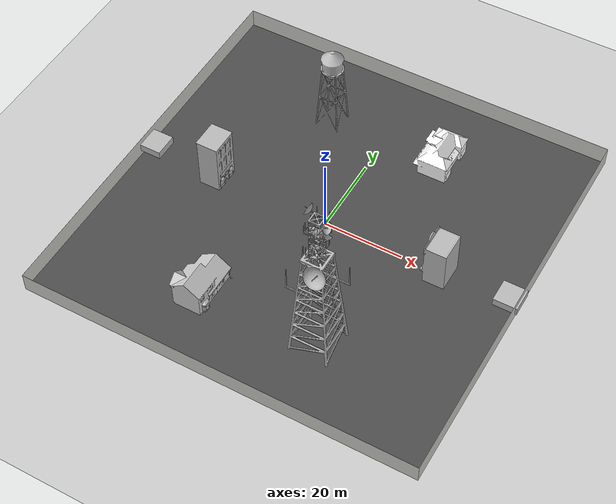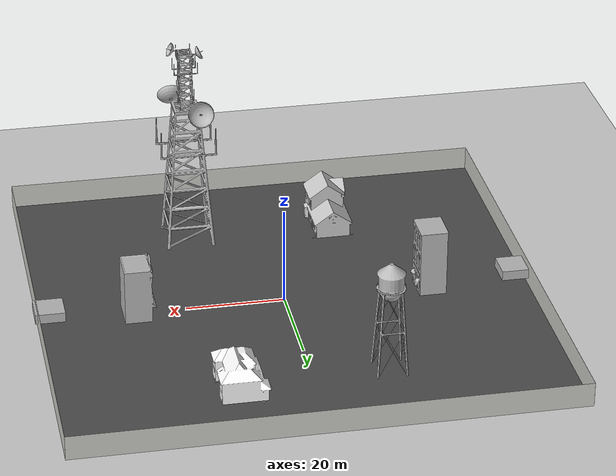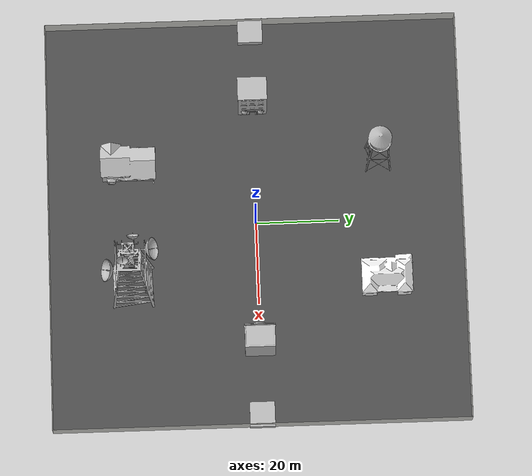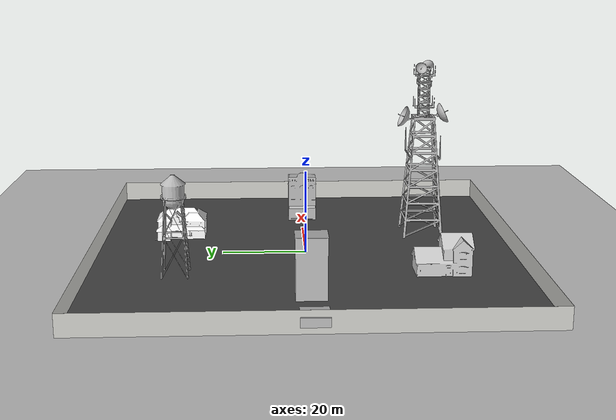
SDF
<sdf version="1.6">
 <world name="default">
  <light name="sun" type="directional">
   <pose>0 0 10 0 -0 0</pose>
   <diffuse>0.8 0.8 0.8 1</diffuse>
   <specular>0.1 0.1 0.1 1</specular>
   <attenuation>
    <range>1000</range>
    <constant>0.9</constant>
    <linear>0.01</linear>
    <quadratic>0.001</quadratic>
   </attenuation>
   <direction>-0.5 0.5 -1</direction>
  </light>
  <model name="ground_plane">
   <static>1</static>
   <link name="link">
    <collision name="collision">
     <geometry><plane><normal>0 0 1</normal><size>100 100</size></plane></geometry>
     <surface><friction><ode><mu>100</mu><mu2>50</mu2></ode></friction></surface>
    </collision>
    <visual name="visual">
     <cast_shadows>0</cast_shadows>
     <geometry><plane><normal>0 0 1</normal><size>100 100</size></plane></geometry>
     <material>
      <script><uri>file://media/materials/scripts/gazebo.material</uri><name>Gazebo/Grey</name></script>
     </material>
    </visual>
   </link>
  </model>
  <gravity>0 0 -9.8</gravity>
  <magnetic_field>6e-06 2.3e-05 -4.2e-05</magnetic_field>
  <atmosphere type="adiabatic"/>
  <physics name="default_physics" default="0" type="ode">
   <max_step_size>0.005</max_step_size>
   <real_time_factor>1</real_time_factor>
   <real_time_update_rate>1000</real_time_update_rate>
  </physics>
  <scene><ambient>0.4 0.4 0.4 1</ambient><background>0.7 0.7 0.7 1</background><shadows>1</shadows></scene>
  <spherical_coordinates>
   <surface_model>EARTH_WGS84</surface_model>
   <latitude_deg>0</latitude_deg>
   <longitude_deg>0</longitude_deg>
   <elevation>0</elevation>
   <heading_deg>0</heading_deg>
  </spherical_coordinates>
  <model name="1907082Y2B_wall">
   <link name="Wall_11">
    <collision name="Wall_11_Collision">
     <geometry><box><size>100.01 0.01 5</size></box></geometry>
     <pose>0 0 2.5 0 -0 0</pose>
    </collision>
    <visual name="Wall_11_Visual">
     <pose>0 0 2.5 0 -0 0</pose>
     <geometry><box><size>100.01 0.01 5</size></box></geometry>
     <material>
      <script><uri>file://media/materials/scripts/gazebo.material</uri><name>Gazebo/CeilingTiled</name></script>
      <ambient>1 1 1 1</ambient>
     </material>
    </visual>
    <pose>50 2e-06 0 0 0 -1.5708</pose>
   </link>
   <link name="Wall_5">
    <collision name="Wall_5_Collision">
     <geometry><box><size>100.01 0.01 5</size></box></geometry>
     <pose>0 0 2.5 0 -0 0</pose>
    </collision>
    <visual name="Wall_5_Visual">
     <pose>0 0 2.5 0 -0 0</pose>
     <geometry><box><size>100.01 0.01 5</size></box></geometry>
     <material>
      <script><uri>file://media/materials/scripts/gazebo.material</uri><name>Gazebo/CeilingTiled</name></script>
      <ambient>1 1 1 1</ambient>
     </material>
    </visual>
    <pose>1e-06 -50 0 0 -0 0</pose>
   </link>
   <link name="Wall_7">
    <collision name="Wall_7_Collision">
     <geometry><box><size>100.01 0.01 5</size></box></geometry>
     <pose>0 0 2.5 0 -0 0</pose>
    </collision>
    <visual name="Wall_7_Visual">
     <pose>0 0 2.5 0 -0 0</pose>
     <geometry><box><size>100.01 0.01 5</size></box></geometry>
     <material>
      <script><uri>file://media/materials/scripts/gazebo.material</uri><name>Gazebo/CeilingTiled</name></script>
      <ambient>1 1 1 1</ambient>
     </material>
    </visual>
    <pose>-50 2e-06 0 0 -0 1.5708</pose>
   </link>
   <link name="Wall_9">
    <collision name="Wall_9_Collision">
     <geometry><box><size>100.01 0.01 5</size></box></geometry>
     <pose>0 0 2.5 0 -0 0</pose>
    </collision>
    <visual name="Wall_9_Visual">
     <pose>0 0 2.5 0 -0 0</pose>
     <geometry><box><size>100.01 0.01 5</size></box></geometry>
     <material>
      <script><uri>file://media/materials/scripts/gazebo.material</uri><name>Gazebo/CeilingTiled</name></script>
      <ambient>1 1 1 1</ambient>
     </material>
    </visual>
    <pose>1e-06 50 0 0 -0 0</pose>
   </link>
   <static>1</static>
  </model>
  <model name="1807082Y2B_box_target_green_1">
   <link name="link">
    <inertial>
     <mass>1</mass>
     <inertia><ixx>1</ixx><ixy>0</ixy><ixz>0</ixz><iyy>1</iyy><iyz>0</iyz><izz>1</izz></inertia>
    </inertial>
    <visual name="visual">
     <geometry><mesh><uri>model://box_target_green/meshes/mesh.dae</uri><scale>1 1 1</scale></mesh></geometry>
     <material><shader type="vertex"><normal_map>__default__</normal_map></shader></material>
    </visual>
    <collision name="collision">
     <geometry><box><size>5 10 5</size></box></geometry>
     <surface>
      <friction>
       <ode><mu>1</mu><mu2>1</mu2><fdir1>0 0 0</fdir1><slip1>0</slip1><slip2>0</slip2></ode>
       <torsional>
        <coefficient>1</coefficient>
        <patch_radius>0</patch_radius>
        <surface_radius>0</surface_radius>
        <use_patch_radius>1</use_patch_radius>
        <ode><slip>0</slip></ode>
       </torsional>
      </friction>
      <bounce><restitution_coefficient>0</restitution_coefficient><threshold>1e+06</threshold></bounce>
      <contact>
       <collide_without_contact>0</collide_without_contact>
       <collide_without_contact_bitmask>1</collide_without_contact_bitmask>
       <collide_bitmask>1</collide_bitmask>
       <ode>
        <soft_cfm>0</soft_cfm>
        <soft_erp>0.2</soft_erp>
        <kp>1e+13</kp>
        <kd>1</kd>
        <max_vel>0.01</max_vel>
        <min_depth>0</min_depth>
       </ode>
       <bullet>
        <split_impulse>1</split_impulse>
        <split_impulse_penetration_threshold>-0.01</split_impulse_penetration_threshold>
        <soft_cfm>0</soft_cfm>
        <soft_erp>0.2</soft_erp>
        <kp>1e+13</kp>
        <kd>1</kd>
       </bullet>
      </contact>
     </surface>
    </collision>
   </link>
   <static>1</static>
   <pose>-47.5 0 2.5 0 -0 0</pose>
  </model>
  <model name="190708_box_target_red_0">
   <link name="link">
    <inertial>
     <mass>1</mass>
     <inertia><ixx>1</ixx><ixy>0</ixy><ixz>0</ixz><iyy>1</iyy><iyz>0</iyz><izz>1</izz></inertia>
    </inertial>
    <visual name="visual">
     <geometry><mesh><uri>model://box_target_red/meshes/mesh.dae</uri><scale>1 1 1</scale></mesh></geometry>
     <material><shader type="vertex"><normal_map>__default__</normal_map></shader></material>
    </visual>
    <collision name="collision">
     <geometry><box><size>5 10 5</size></box></geometry>
     <surface>
      <friction>
       <ode><mu>1</mu><mu2>1</mu2><fdir1>0 0 0</fdir1><slip1>0</slip1><slip2>0</slip2></ode>
       <torsional>
        <coefficient>1</coefficient>
        <patch_radius>0</patch_radius>
        <surface_radius>0</surface_radius>
        <use_patch_radius>1</use_patch_radius>
        <ode><slip>0</slip></ode>
       </torsional>
      </friction>
      <bounce><restitution_coefficient>0</restitution_coefficient><threshold>1e+06</threshold></bounce>
      <contact>
       <collide_without_contact>0</collide_without_contact>
       <collide_without_contact_bitmask>1</collide_without_contact_bitmask>
       <collide_bitmask>1</collide_bitmask>
       <ode>
        <soft_cfm>0</soft_cfm>
        <soft_erp>0.2</soft_erp>
        <kp>1e+13</kp>
        <kd>1</kd>
        <max_vel>0.01</max_vel>
        <min_depth>0</min_depth>
       </ode>
       <bullet>
        <split_impulse>1</split_impulse>
        <split_impulse_penetration_threshold>-0.01</split_impulse_penetration_threshold>
        <soft_cfm>0</soft_cfm>
        <soft_erp>0.2</soft_erp>
        <kp>1e+13</kp>
        <kd>1</kd>
       </bullet>
      </contact>
     </surface>
    </collision>
   </link>
   <static>1</static>
   <pose>47.5 0 2.5 0 -0 0</pose>
  </model>
  <model name="1907082Y2B_planeGreen">
   <link name="link">
    <inertial>
     <mass>1</mass>
     <inertia><ixx>1</ixx><ixy>0</ixy><ixz>0</ixz><iyy>1</iyy><iyz>0</iyz><izz>1</izz></inertia>
    </inertial>
    <visual name="visual">
     <cast_shadows>0</cast_shadows>
     <geometry><box><size>100 100 0.01</size></box></geometry>
     <material>
      <script>
       <uri>model://asphalt_plane/materials/scripts</uri>
       <uri>model://asphalt_plane/materials/textures</uri>
       <name>vrc/asphalt</name>
      </script>
      <ambient>0 1 0 1</ambient>
      <diffuse>0 1 0 1</diffuse>
      <specular>0 1 0 1</specular>
      <emissive>0 0 0 1</emissive>
      <shader type="vertex"><normal_map>__default__</normal_map></shader>
     </material>
    </visual>
    <collision name="collision">
     <geometry><box><size>100 100 0.01</size></box></geometry>
     <surface>
      <friction>
       <ode><mu>1</mu><mu2>1</mu2><fdir1>0 0 0</fdir1><slip1>0</slip1><slip2>0</slip2></ode>
       <torsional>
        <coefficient>1</coefficient>
        <patch_radius>0</patch_radius>
        <surface_radius>0</surface_radius>
        <use_patch_radius>1</use_patch_radius>
        <ode><slip>0</slip></ode>
       </torsional>
      </friction>
      <bounce><restitution_coefficient>0</restitution_coefficient><threshold>1e+06</threshold></bounce>
      <contact>
       <collide_without_contact>0</collide_without_contact>
       <collide_without_contact_bitmask>1</collide_without_contact_bitmask>
       <collide_bitmask>1</collide_bitmask>
       <ode>
        <soft_cfm>0</soft_cfm>
        <soft_erp>0.2</soft_erp>
        <kp>1e+13</kp>
        <kd>1</kd>
        <max_vel>0.01</max_vel>
        <min_depth>0</min_depth>
       </ode>
       <bullet>
        <split_impulse>1</split_impulse>
        <split_impulse_penetration_threshold>-0.01</split_impulse_penetration_threshold>
        <soft_cfm>0</soft_cfm>
        <soft_erp>0.2</soft_erp>
        <kp>1e+13</kp>
        <kd>1</kd>
       </bullet>
      </contact>
     </surface>
    </collision>
   </link>
   <static>1</static>
   <pose>0 0 0.01 0 -0 0</pose>
  </model>
  <model name="House 2">
   <static>1</static>
   <link name="link">
    <collision name="collision">
     <geometry><mesh><uri>model://house_2/meshes/house_2.dae</uri><scale>1.5 1.5 1.5</scale></mesh></geometry>
    </collision>
    <visual name="visual">
     <geometry><mesh><uri>model://house_2/meshes/house_2.dae</uri><scale>1.5 1.5 1.5</scale></mesh></geometry>
     <material>
      <script>
       <uri>model://house_2/materials/scripts</uri>
       <uri>model://house_2/materials/textures</uri>
       <uri>model://house_1/materials/textures</uri>
       <name>House_2/Diffuse</name>
      </script>
     </material>
    </visual>
   </link>
   <pose>15 30 0 0 -0 1.57</pose>
  </model>
  <model name="thrift_shop">
   <static>1</static>
   <link name="link">
    <collision name="collision">
     <pose>0 0 5.69469 0 -0 0</pose>
     <geometry><box><size>7.21297 5.43165 11.3894</size></box></geometry>
    </collision>
    <visual name="visual">
     <pose>0 -0.912491 0 0 -0 0</pose>
     <geometry><mesh><uri>model://thrift_shop/meshes/thrift_shop.dae</uri></mesh></geometry>
    </visual>
   </link>
   <pose>30 0 0 0 0 -1.57</pose>
  </model>
  <model name="water_tower">
   <static>1</static>
   <link name="link">
    <collision name="collision">
     <geometry><mesh><uri>model://water_tower/meshes/water_tower.dae</uri></mesh></geometry>
    </collision>
    <visual name="visual">
     <geometry><mesh><uri>model://water_tower/meshes/water_tower.dae</uri></mesh></geometry>
    </visual>
   </link>
   <pose>-15 30 0 0 -0 0</pose>
  </model>
  <model name="law_office">
   <static>1</static>
   <link name="link">
    <collision name="collision">
     <pose>0 0 6.96244 0 -0 0</pose>
     <geometry><box><size>6.84401 5.43165 13.9249</size></box></geometry>
    </collision>
    <visual name="visual">
     <geometry><mesh><uri>model://law_office/meshes/law_office.dae</uri></mesh></geometry>
    </visual>
   </link>
   <pose>-30 0 0 0 -0 1.57</pose>
  </model>
  <model name="House 3">
   <static>1</static>
   <link name="link">
    <collision name="collision">
     <geometry><mesh><uri>model://house_3/meshes/house_3.dae</uri><scale>1.5 1.5 1.5</scale></mesh></geometry>
    </collision>
    <visual name="visual">
     <geometry><mesh><uri>model://house_3/meshes/house_3.dae</uri><scale>1.5 1.5 1.5</scale></mesh></geometry>
     <material>
      <script>
       <uri>model://house_3/materials/scripts</uri>
       <uri>model://house_3/materials/textures</uri>
       <uri>model://house_1/materials/textures</uri>
       <name>House_3/Diffuse</name>
      </script>
     </material>
    </visual>
   </link>
   <pose>-15 -30 0 0 -0 1.57</pose>
  </model>
  <model name="radio_tower">
   <static>1</static>
   <link name="link">
    <collision name="collision">
     <geometry><mesh><uri>model://radio_tower/meshes/radio_tower.dae</uri></mesh></geometry>
    </collision>
    <visual name="visual">
     <geometry><mesh><uri>model://radio_tower/meshes/radio_tower.dae</uri></mesh></geometry>
    </visual>
   </link>
   <pose>15 -30 0 0 -0 0</pose>
  </model>
 </world>
</sdf>
